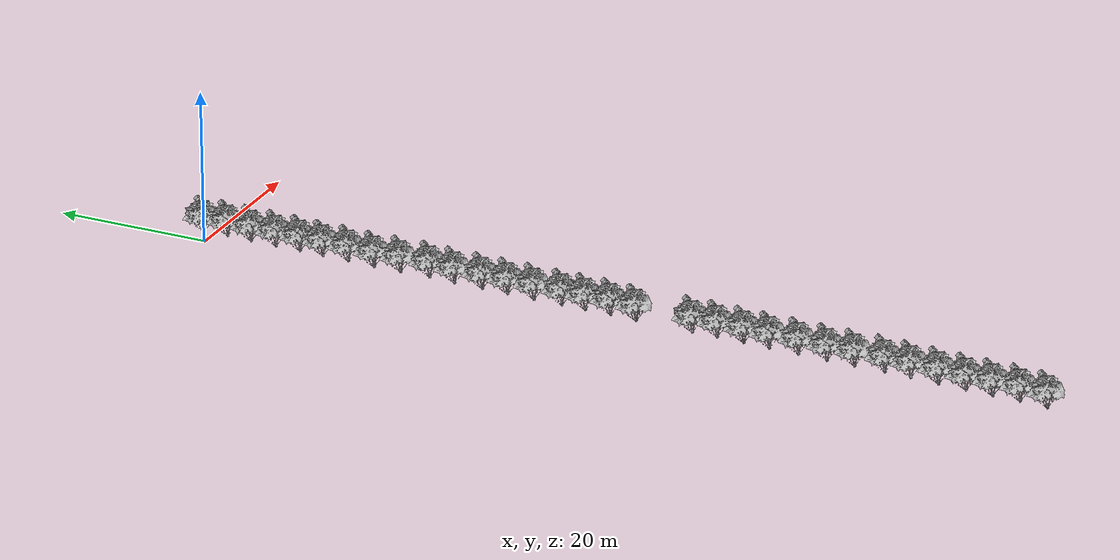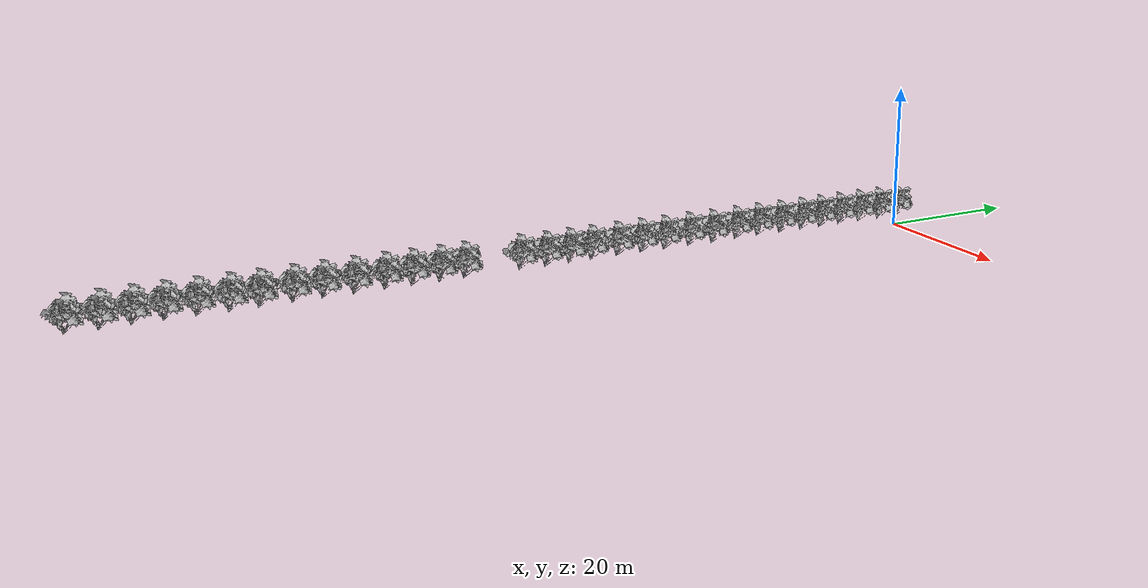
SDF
<?xml version='1.0'?>
<sdf version='1.7'>
  <model name='bush_pattern'>
    <model name='Bush 1'>
      <static>1</static>
      <pose>0 0 1.265 1.57079 -0 0</pose>
      <link name='link'>
        <pose>0 0 0 0 -0 0</pose>
        <collision name='collision'>
          <geometry>
            <mesh>
              <scale>5 5 5</scale>
              <uri>model://bush_1/meshes/bush_1.obj</uri>
            </mesh>
          </geometry>
          <max_contacts>10</max_contacts>
          <surface>
            <contact>
              <ode/>
            </contact>
            <bounce/>
            <friction>
              <torsional>
                <ode/>
              </torsional>
              <ode/>
            </friction>
          </surface>
        </collision>
        <visual name='visual'>
          <geometry>
            <mesh>
              <scale>5 5 5</scale>
              <uri>model://bush_1/meshes/bush_1.obj</uri>
            </mesh>
          </geometry>
        </visual>
        <self_collide>0</self_collide>
        <enable_wind>0</enable_wind>
        <kinematic>0</kinematic>
      </link>
    </model>
    <model name='Bush 1_clone'>
      <static>1</static>
      <pose>0.112137 -3.28784 1.265 1.57079 -0 0</pose>
      <link name='link'>
        <pose>0 0 0 0 -0 0</pose>
        <collision name='collision'>
          <geometry>
            <mesh>
              <scale>5 5 5</scale>
              <uri>model://bush_1/meshes/bush_1.obj</uri>
            </mesh>
          </geometry>
          <max_contacts>10</max_contacts>
          <surface>
            <contact>
              <ode/>
            </contact>
            <bounce/>
            <friction>
              <torsional>
                <ode/>
              </torsional>
              <ode/>
            </friction>
          </surface>
        </collision>
        <visual name='visual'>
          <geometry>
            <mesh>
              <scale>5 5 5</scale>
              <uri>model://bush_1/meshes/bush_1.obj</uri>
            </mesh>
          </geometry>
        </visual>
        <self_collide>0</self_collide>
        <enable_wind>0</enable_wind>
        <kinematic>0</kinematic>
      </link>
    </model>
    <model name='Bush 1_clone_0'>
      <static>1</static>
      <pose>-0.055115 -10.0785 1.265 1.57079 -0 0</pose>
      <link name='link'>
        <pose>0 0 0 0 -0 0</pose>
        <collision name='collision'>
          <geometry>
            <mesh>
              <scale>5 5 5</scale>
              <uri>model://bush_1/meshes/bush_1.obj</uri>
            </mesh>
          </geometry>
          <max_contacts>10</max_contacts>
          <surface>
            <contact>
              <ode/>
            </contact>
            <bounce/>
            <friction>
              <torsional>
                <ode/>
              </torsional>
              <ode/>
            </friction>
          </surface>
        </collision>
        <visual name='visual'>
          <geometry>
            <mesh>
              <scale>5 5 5</scale>
              <uri>model://bush_1/meshes/bush_1.obj</uri>
            </mesh>
          </geometry>
        </visual>
        <self_collide>0</self_collide>
        <enable_wind>0</enable_wind>
        <kinematic>0</kinematic>
      </link>
    </model>
    <model name='Bush 1_clone_1'>
      <static>1</static>
      <pose>-0.061951 -13.4135 1.265 1.57079 -0 0</pose>
      <link name='link'>
        <pose>0 0 0 0 -0 0</pose>
        <collision name='collision'>
          <geometry>
            <mesh>
              <scale>5 5 5</scale>
              <uri>model://bush_1/meshes/bush_1.obj</uri>
            </mesh>
          </geometry>
          <max_contacts>10</max_contacts>
          <surface>
            <contact>
              <ode/>
            </contact>
            <bounce/>
            <friction>
              <torsional>
                <ode/>
              </torsional>
              <ode/>
            </friction>
          </surface>
        </collision>
        <visual name='visual'>
          <geometry>
            <mesh>
              <scale>5 5 5</scale>
              <uri>model://bush_1/meshes/bush_1.obj</uri>
            </mesh>
          </geometry>
        </visual>
        <self_collide>0</self_collide>
        <enable_wind>0</enable_wind>
        <kinematic>0</kinematic>
      </link>
    </model>
    <model name='Bush 1_clone_10'>
      <static>1</static>
      <pose>-0.414612 -41.8186 1.265 1.57079 -0 0</pose>
      <link name='link'>
        <pose>0 0 0 0 -0 0</pose>
        <collision name='collision'>
          <geometry>
            <mesh>
              <scale>5 5 5</scale>
              <uri>model://bush_1/meshes/bush_1.obj</uri>
            </mesh>
          </geometry>
          <max_contacts>10</max_contacts>
          <surface>
            <contact>
              <ode/>
            </contact>
            <bounce/>
            <friction>
              <torsional>
                <ode/>
              </torsional>
              <ode/>
            </friction>
          </surface>
        </collision>
        <visual name='visual'>
          <geometry>
            <mesh>
              <scale>5 5 5</scale>
              <uri>model://bush_1/meshes/bush_1.obj</uri>
            </mesh>
          </geometry>
        </visual>
        <self_collide>0</self_collide>
        <enable_wind>0</enable_wind>
        <kinematic>0</kinematic>
      </link>
    </model>
    <model name='Bush 1_clone_11'>
      <static>1</static>
      <pose>-0.455643 -45.3418 1.265 1.57079 -0 0</pose>
      <link name='link'>
        <pose>0 0 0 0 -0 0</pose>
        <collision name='collision'>
          <geometry>
            <mesh>
              <scale>5 5 5</scale>
              <uri>model://bush_1/meshes/bush_1.obj</uri>
            </mesh>
          </geometry>
          <max_contacts>10</max_contacts>
          <surface>
            <contact>
              <ode/>
            </contact>
            <bounce/>
            <friction>
              <torsional>
                <ode/>
              </torsional>
              <ode/>
            </friction>
          </surface>
        </collision>
        <visual name='visual'>
          <geometry>
            <mesh>
              <scale>5 5 5</scale>
              <uri>model://bush_1/meshes/bush_1.obj</uri>
            </mesh>
          </geometry>
        </visual>
        <self_collide>0</self_collide>
        <enable_wind>0</enable_wind>
        <kinematic>0</kinematic>
      </link>
    </model>
    <model name='Bush 1_clone_12'>
      <static>1</static>
      <pose>-0.473053 -49.0764 1.265 1.57079 -0 0</pose>
      <link name='link'>
        <pose>0 0 0 0 -0 0</pose>
        <collision name='collision'>
          <geometry>
            <mesh>
              <scale>5 5 5</scale>
              <uri>model://bush_1/meshes/bush_1.obj</uri>
            </mesh>
          </geometry>
          <max_contacts>10</max_contacts>
          <surface>
            <contact>
              <ode/>
            </contact>
            <bounce/>
            <friction>
              <torsional>
                <ode/>
              </torsional>
              <ode/>
            </friction>
          </surface>
        </collision>
        <visual name='visual'>
          <geometry>
            <mesh>
              <scale>5 5 5</scale>
              <uri>model://bush_1/meshes/bush_1.obj</uri>
            </mesh>
          </geometry>
        </visual>
        <self_collide>0</self_collide>
        <enable_wind>0</enable_wind>
        <kinematic>0</kinematic>
      </link>
    </model>
    <model name='Bush 1_clone_13'>
      <static>1</static>
      <pose>-0.481537 -52.1925 1.265 1.57079 -0 0</pose>
      <link name='link'>
        <pose>0 0 0 0 -0 0</pose>
        <collision name='collision'>
          <geometry>
            <mesh>
              <scale>5 5 5</scale>
              <uri>model://bush_1/meshes/bush_1.obj</uri>
            </mesh>
          </geometry>
          <max_contacts>10</max_contacts>
          <surface>
            <contact>
              <ode/>
            </contact>
            <bounce/>
            <friction>
              <torsional>
                <ode/>
              </torsional>
              <ode/>
            </friction>
          </surface>
        </collision>
        <visual name='visual'>
          <geometry>
            <mesh>
              <scale>5 5 5</scale>
              <uri>model://bush_1/meshes/bush_1.obj</uri>
            </mesh>
          </geometry>
        </visual>
        <self_collide>0</self_collide>
        <enable_wind>0</enable_wind>
        <kinematic>0</kinematic>
      </link>
    </model>
    <model name='Bush 1_clone_14'>
      <static>1</static>
      <pose>-0.449783 -55.5143 1.265 1.57079 -0 0</pose>
      <link name='link'>
        <pose>0 0 0 0 -0 0</pose>
        <collision name='collision'>
          <geometry>
            <mesh>
              <scale>5 5 5</scale>
              <uri>model://bush_1/meshes/bush_1.obj</uri>
            </mesh>
          </geometry>
          <max_contacts>10</max_contacts>
          <surface>
            <contact>
              <ode/>
            </contact>
            <bounce/>
            <friction>
              <torsional>
                <ode/>
              </torsional>
              <ode/>
            </friction>
          </surface>
        </collision>
        <visual name='visual'>
          <geometry>
            <mesh>
              <scale>5 5 5</scale>
              <uri>model://bush_1/meshes/bush_1.obj</uri>
            </mesh>
          </geometry>
        </visual>
        <self_collide>0</self_collide>
        <enable_wind>0</enable_wind>
        <kinematic>0</kinematic>
      </link>
    </model>
    <model name='Bush 1_clone_14_clone'>
      <static>1</static>
      <pose>-0.668167 -58.9553 1.265 1.57079 -0 0</pose>
      <link name='link'>
        <pose>0 0 0 0 -0 0</pose>
        <collision name='collision'>
          <geometry>
            <mesh>
              <scale>5 5 5</scale>
              <uri>model://bush_1/meshes/bush_1.obj</uri>
            </mesh>
          </geometry>
          <max_contacts>10</max_contacts>
          <surface>
            <contact>
              <ode/>
            </contact>
            <bounce/>
            <friction>
              <torsional>
                <ode/>
              </torsional>
              <ode/>
            </friction>
          </surface>
        </collision>
        <visual name='visual'>
          <geometry>
            <mesh>
              <scale>5 5 5</scale>
              <uri>model://bush_1/meshes/bush_1.obj</uri>
            </mesh>
          </geometry>
        </visual>
        <self_collide>0</self_collide>
        <enable_wind>0</enable_wind>
        <kinematic>0</kinematic>
      </link>
    </model>
    <model name='Bush 1_clone_15'>
      <static>1</static>
      <pose>-1.51018 -108.409 1.265 1.57079 -0 0</pose>
      <link name='link'>
        <pose>0 0 0 0 -0 0</pose>
        <collision name='collision'>
          <geometry>
            <mesh>
              <scale>5 5 5</scale>
              <uri>model://bush_1/meshes/bush_1.obj</uri>
            </mesh>
          </geometry>
          <max_contacts>10</max_contacts>
          <surface>
            <contact>
              <ode/>
            </contact>
            <bounce/>
            <friction>
              <torsional>
                <ode/>
              </torsional>
              <ode/>
            </friction>
          </surface>
        </collision>
        <visual name='visual'>
          <geometry>
            <mesh>
              <scale>5 5 5</scale>
              <uri>model://bush_1/meshes/bush_1.obj</uri>
            </mesh>
          </geometry>
        </visual>
        <self_collide>0</self_collide>
        <enable_wind>0</enable_wind>
        <kinematic>0</kinematic>
      </link>
    </model>
    <model name='Bush 1_clone_15_clone'>
      <static>1</static>
      <pose>-1.7821 -111.923 1.265 1.57079 -0 0</pose>
      <link name='link'>
        <pose>0 0 0 0 -0 0</pose>
        <collision name='collision'>
          <geometry>
            <mesh>
              <scale>5 5 5</scale>
              <uri>model://bush_1/meshes/bush_1.obj</uri>
            </mesh>
          </geometry>
          <max_contacts>10</max_contacts>
          <surface>
            <contact>
              <ode/>
            </contact>
            <bounce/>
            <friction>
              <torsional>
                <ode/>
              </torsional>
              <ode/>
            </friction>
          </surface>
        </collision>
        <visual name='visual'>
          <geometry>
            <mesh>
              <scale>5 5 5</scale>
              <uri>model://bush_1/meshes/bush_1.obj</uri>
            </mesh>
          </geometry>
        </visual>
        <self_collide>0</self_collide>
        <enable_wind>0</enable_wind>
        <kinematic>0</kinematic>
      </link>
    </model>
    <model name='Bush 1_clone_2'>
      <static>1</static>
      <pose>-0.114975 -16.5927 1.265 1.57079 -0 0</pose>
      <link name='link'>
        <pose>0 0 0 0 -0 0</pose>
        <collision name='collision'>
          <geometry>
            <mesh>
              <scale>5 5 5</scale>
              <uri>model://bush_1/meshes/bush_1.obj</uri>
            </mesh>
          </geometry>
          <max_contacts>10</max_contacts>
          <surface>
            <contact>
              <ode/>
            </contact>
            <bounce/>
            <friction>
              <torsional>
                <ode/>
              </torsional>
              <ode/>
            </friction>
          </surface>
        </collision>
        <visual name='visual'>
          <geometry>
            <mesh>
              <scale>5 5 5</scale>
              <uri>model://bush_1/meshes/bush_1.obj</uri>
            </mesh>
          </geometry>
        </visual>
        <self_collide>0</self_collide>
        <enable_wind>0</enable_wind>
        <kinematic>0</kinematic>
      </link>
    </model>
    <model name='Bush 1_clone_3'>
      <static>1</static>
      <pose>-0.145905 -20.1059 1.265 1.57079 -0 0</pose>
      <link name='link'>
        <pose>0 0 0 0 -0 0</pose>
        <collision name='collision'>
          <geometry>
            <mesh>
              <scale>5 5 5</scale>
              <uri>model://bush_1/meshes/bush_1.obj</uri>
            </mesh>
          </geometry>
          <max_contacts>10</max_contacts>
          <surface>
            <contact>
              <ode/>
            </contact>
            <bounce/>
            <friction>
              <torsional>
                <ode/>
              </torsional>
              <ode/>
            </friction>
          </surface>
        </collision>
        <visual name='visual'>
          <geometry>
            <mesh>
              <scale>5 5 5</scale>
              <uri>model://bush_1/meshes/bush_1.obj</uri>
            </mesh>
          </geometry>
        </visual>
        <self_collide>0</self_collide>
        <enable_wind>0</enable_wind>
        <kinematic>0</kinematic>
      </link>
    </model>
    <model name='Bush 1_clone_4'>
      <static>1</static>
      <pose>-0.334549 -23.7048 1.265 1.57079 -0 0</pose>
      <link name='link'>
        <pose>0 0 0 0 -0 0</pose>
        <collision name='collision'>
          <geometry>
            <mesh>
              <scale>5 5 5</scale>
              <uri>model://bush_1/meshes/bush_1.obj</uri>
            </mesh>
          </geometry>
          <max_contacts>10</max_contacts>
          <surface>
            <contact>
              <ode/>
            </contact>
            <bounce/>
            <friction>
              <torsional>
                <ode/>
              </torsional>
              <ode/>
            </friction>
          </surface>
        </collision>
        <visual name='visual'>
          <geometry>
            <mesh>
              <scale>5 5 5</scale>
              <uri>model://bush_1/meshes/bush_1.obj</uri>
            </mesh>
          </geometry>
        </visual>
        <self_collide>0</self_collide>
        <enable_wind>0</enable_wind>
        <kinematic>0</kinematic>
      </link>
    </model>
    <model name='Bush 1_clone_5'>
      <static>1</static>
      <pose>-0.252243 -27.2728 1.265 1.57079 -0 0</pose>
      <link name='link'>
        <pose>0 0 0 0 -0 0</pose>
        <collision name='collision'>
          <geometry>
            <mesh>
              <scale>5 5 5</scale>
              <uri>model://bush_1/meshes/bush_1.obj</uri>
            </mesh>
          </geometry>
          <max_contacts>10</max_contacts>
          <surface>
            <contact>
              <ode/>
            </contact>
            <bounce/>
            <friction>
              <torsional>
                <ode/>
              </torsional>
              <ode/>
            </friction>
          </surface>
        </collision>
        <visual name='visual'>
          <geometry>
            <mesh>
              <scale>5 5 5</scale>
              <uri>model://bush_1/meshes/bush_1.obj</uri>
            </mesh>
          </geometry>
        </visual>
        <self_collide>0</self_collide>
        <enable_wind>0</enable_wind>
        <kinematic>0</kinematic>
      </link>
    </model>
    <model name='Bush 1_clone_6'>
      <static>1</static>
      <pose>-0.070557 -31.1364 1.265 1.57079 -0 0</pose>
      <link name='link'>
        <pose>0 0 0 0 -0 0</pose>
        <collision name='collision'>
          <geometry>
            <mesh>
              <scale>5 5 5</scale>
              <uri>model://bush_1/meshes/bush_1.obj</uri>
            </mesh>
          </geometry>
          <max_contacts>10</max_contacts>
          <surface>
            <contact>
              <ode/>
            </contact>
            <bounce/>
            <friction>
              <torsional>
                <ode/>
              </torsional>
              <ode/>
            </friction>
          </surface>
        </collision>
        <visual name='visual'>
          <geometry>
            <mesh>
              <scale>5 5 5</scale>
              <uri>model://bush_1/meshes/bush_1.obj</uri>
            </mesh>
          </geometry>
        </visual>
        <self_collide>0</self_collide>
        <enable_wind>0</enable_wind>
        <kinematic>0</kinematic>
      </link>
    </model>
    <model name='Bush 1_clone_7'>
      <static>1</static>
      <pose>-0.343124 -34.6276 1.265 1.57079 -0 0</pose>
      <link name='link'>
        <pose>0 0 0 0 -0 0</pose>
        <collision name='collision'>
          <geometry>
            <mesh>
              <scale>5 5 5</scale>
              <uri>model://bush_1/meshes/bush_1.obj</uri>
            </mesh>
          </geometry>
          <max_contacts>10</max_contacts>
          <surface>
            <contact>
              <ode/>
            </contact>
            <bounce/>
            <friction>
              <torsional>
                <ode/>
              </torsional>
              <ode/>
            </friction>
          </surface>
        </collision>
        <visual name='visual'>
          <geometry>
            <mesh>
              <scale>5 5 5</scale>
              <uri>model://bush_1/meshes/bush_1.obj</uri>
            </mesh>
          </geometry>
        </visual>
        <self_collide>0</self_collide>
        <enable_wind>0</enable_wind>
        <kinematic>0</kinematic>
      </link>
    </model>
    <model name='Bush 1_clone_8'>
      <static>1</static>
      <pose>-0.333206 -38.3762 1.265 1.57079 -0 0</pose>
      <link name='link'>
        <pose>0 0 0 0 -0 0</pose>
        <collision name='collision'>
          <geometry>
            <mesh>
              <scale>5 5 5</scale>
              <uri>model://bush_1/meshes/bush_1.obj</uri>
            </mesh>
          </geometry>
          <max_contacts>10</max_contacts>
          <surface>
            <contact>
              <ode/>
            </contact>
            <bounce/>
            <friction>
              <torsional>
                <ode/>
              </torsional>
              <ode/>
            </friction>
          </surface>
        </collision>
        <visual name='visual'>
          <geometry>
            <mesh>
              <scale>5 5 5</scale>
              <uri>model://bush_1/meshes/bush_1.obj</uri>
            </mesh>
          </geometry>
        </visual>
        <self_collide>0</self_collide>
        <enable_wind>0</enable_wind>
        <kinematic>0</kinematic>
      </link>
    </model>
    <model name='Bush 1_clone_9'>
      <static>1</static>
      <pose>-0.698364 -66.3474 1.265 1.57079 -0 0</pose>
      <link name='link'>
        <pose>0 0 0 0 -0 0</pose>
        <collision name='collision'>
          <geometry>
            <mesh>
              <scale>5 5 5</scale>
              <uri>model://bush_1/meshes/bush_1.obj</uri>
            </mesh>
          </geometry>
          <max_contacts>10</max_contacts>
          <surface>
            <contact>
              <ode/>
            </contact>
            <bounce/>
            <friction>
              <torsional>
                <ode/>
              </torsional>
              <ode/>
            </friction>
          </surface>
        </collision>
        <visual name='visual'>
          <geometry>
            <mesh>
              <scale>5 5 5</scale>
              <uri>model://bush_1/meshes/bush_1.obj</uri>
            </mesh>
          </geometry>
        </visual>
        <self_collide>0</self_collide>
        <enable_wind>0</enable_wind>
        <kinematic>0</kinematic>
      </link>
    </model>
    <model name='Bush 1_clone_9_clone_0'>
      <static>1</static>
      <pose>-0.661194 -69.5571 1.265 1.57079 -0 0</pose>
      <link name='link'>
        <pose>0 0 0 0 -0 0</pose>
        <collision name='collision'>
          <geometry>
            <mesh>
              <scale>5 5 5</scale>
              <uri>model://bush_1/meshes/bush_1.obj</uri>
            </mesh>
          </geometry>
          <max_contacts>10</max_contacts>
          <surface>
            <contact>
              <ode/>
            </contact>
            <bounce/>
            <friction>
              <torsional>
                <ode/>
              </torsional>
              <ode/>
            </friction>
          </surface>
        </collision>
        <visual name='visual'>
          <geometry>
            <mesh>
              <scale>5 5 5</scale>
              <uri>model://bush_1/meshes/bush_1.obj</uri>
            </mesh>
          </geometry>
        </visual>
        <self_collide>0</self_collide>
        <enable_wind>0</enable_wind>
        <kinematic>0</kinematic>
      </link>
    </model>
    <model name='Bush 1_clone_9_clone_1'>
      <static>1</static>
      <pose>-0.751205 -73.0414 1.265 1.57079 -0 0</pose>
      <link name='link'>
        <pose>0 0 0 0 -0 0</pose>
        <collision name='collision'>
          <geometry>
            <mesh>
              <scale>5 5 5</scale>
              <uri>model://bush_1/meshes/bush_1.obj</uri>
            </mesh>
          </geometry>
          <max_contacts>10</max_contacts>
          <surface>
            <contact>
              <ode/>
            </contact>
            <bounce/>
            <friction>
              <torsional>
                <ode/>
              </torsional>
              <ode/>
            </friction>
          </surface>
        </collision>
        <visual name='visual'>
          <geometry>
            <mesh>
              <scale>5 5 5</scale>
              <uri>model://bush_1/meshes/bush_1.obj</uri>
            </mesh>
          </geometry>
        </visual>
        <self_collide>0</self_collide>
        <enable_wind>0</enable_wind>
        <kinematic>0</kinematic>
      </link>
    </model>
    <model name='Bush 1_clone_9_clone_10'>
      <static>1</static>
      <pose>-1.26973 -98.1156 1.265 1.57079 -0 0</pose>
      <link name='link'>
        <pose>0 0 0 0 -0 0</pose>
        <collision name='collision'>
          <geometry>
            <mesh>
              <scale>5 5 5</scale>
              <uri>model://bush_1/meshes/bush_1.obj</uri>
            </mesh>
          </geometry>
          <max_contacts>10</max_contacts>
          <surface>
            <contact>
              <ode/>
            </contact>
            <bounce/>
            <friction>
              <torsional>
                <ode/>
              </torsional>
              <ode/>
            </friction>
          </surface>
        </collision>
        <visual name='visual'>
          <geometry>
            <mesh>
              <scale>5 5 5</scale>
              <uri>model://bush_1/meshes/bush_1.obj</uri>
            </mesh>
          </geometry>
        </visual>
        <self_collide>0</self_collide>
        <enable_wind>0</enable_wind>
        <kinematic>0</kinematic>
      </link>
    </model>
    <model name='Bush 1_clone_9_clone_11'>
      <static>1</static>
      <pose>-1.44673 -101.623 1.265 1.57079 -0 0</pose>
      <link name='link'>
        <pose>0 0 0 0 -0 0</pose>
        <collision name='collision'>
          <geometry>
            <mesh>
              <scale>5 5 5</scale>
              <uri>model://bush_1/meshes/bush_1.obj</uri>
            </mesh>
          </geometry>
          <max_contacts>10</max_contacts>
          <surface>
            <contact>
              <ode/>
            </contact>
            <bounce/>
            <friction>
              <torsional>
                <ode/>
              </torsional>
              <ode/>
            </friction>
          </surface>
        </collision>
        <visual name='visual'>
          <geometry>
            <mesh>
              <scale>5 5 5</scale>
              <uri>model://bush_1/meshes/bush_1.obj</uri>
            </mesh>
          </geometry>
        </visual>
        <self_collide>0</self_collide>
        <enable_wind>0</enable_wind>
        <kinematic>0</kinematic>
      </link>
    </model>
    <model name='Bush 1_clone_9_clone_12'>
      <static>1</static>
      <pose>-1.53973 -105.012 1.265 1.57079 -0 0</pose>
      <link name='link'>
        <pose>0 0 0 0 -0 0</pose>
        <collision name='collision'>
          <geometry>
            <mesh>
              <scale>5 5 5</scale>
              <uri>model://bush_1/meshes/bush_1.obj</uri>
            </mesh>
          </geometry>
          <max_contacts>10</max_contacts>
          <surface>
            <contact>
              <ode/>
            </contact>
            <bounce/>
            <friction>
              <torsional>
                <ode/>
              </torsional>
              <ode/>
            </friction>
          </surface>
        </collision>
        <visual name='visual'>
          <geometry>
            <mesh>
              <scale>5 5 5</scale>
              <uri>model://bush_1/meshes/bush_1.obj</uri>
            </mesh>
          </geometry>
        </visual>
        <self_collide>0</self_collide>
        <enable_wind>0</enable_wind>
        <kinematic>0</kinematic>
      </link>
    </model>
    <model name='Bush 1_clone_9_clone_2'>
      <static>1</static>
      <pose>-0.855164 -76.3962 1.265 1.57079 -0 0</pose>
      <link name='link'>
        <pose>0 0 0 0 -0 0</pose>
        <collision name='collision'>
          <geometry>
            <mesh>
              <scale>5 5 5</scale>
              <uri>model://bush_1/meshes/bush_1.obj</uri>
            </mesh>
          </geometry>
          <max_contacts>10</max_contacts>
          <surface>
            <contact>
              <ode/>
            </contact>
            <bounce/>
            <friction>
              <torsional>
                <ode/>
              </torsional>
              <ode/>
            </friction>
          </surface>
        </collision>
        <visual name='visual'>
          <geometry>
            <mesh>
              <scale>5 5 5</scale>
              <uri>model://bush_1/meshes/bush_1.obj</uri>
            </mesh>
          </geometry>
        </visual>
        <self_collide>0</self_collide>
        <enable_wind>0</enable_wind>
        <kinematic>0</kinematic>
      </link>
    </model>
    <model name='Bush 1_clone_9_clone_4'>
      <static>1</static>
      <pose>-0.878479 -80.1486 1.265 1.57079 -0 0</pose>
      <link name='link'>
        <pose>0 0 0 0 -0 0</pose>
        <collision name='collision'>
          <geometry>
            <mesh>
              <scale>5 5 5</scale>
              <uri>model://bush_1/meshes/bush_1.obj</uri>
            </mesh>
          </geometry>
          <max_contacts>10</max_contacts>
          <surface>
            <contact>
              <ode/>
            </contact>
            <bounce/>
            <friction>
              <torsional>
                <ode/>
              </torsional>
              <ode/>
            </friction>
          </surface>
        </collision>
        <visual name='visual'>
          <geometry>
            <mesh>
              <scale>5 5 5</scale>
              <uri>model://bush_1/meshes/bush_1.obj</uri>
            </mesh>
          </geometry>
        </visual>
        <self_collide>0</self_collide>
        <enable_wind>0</enable_wind>
        <kinematic>0</kinematic>
      </link>
    </model>
    <model name='Bush 1_clone_9_clone_5'>
      <static>1</static>
      <pose>-0.996231 -83.8565 1.265 1.57079 -0 0</pose>
      <link name='link'>
        <pose>0 0 0 0 -0 0</pose>
        <collision name='collision'>
          <geometry>
            <mesh>
              <scale>5 5 5</scale>
              <uri>model://bush_1/meshes/bush_1.obj</uri>
            </mesh>
          </geometry>
          <max_contacts>10</max_contacts>
          <surface>
            <contact>
              <ode/>
            </contact>
            <bounce/>
            <friction>
              <torsional>
                <ode/>
              </torsional>
              <ode/>
            </friction>
          </surface>
        </collision>
        <visual name='visual'>
          <geometry>
            <mesh>
              <scale>5 5 5</scale>
              <uri>model://bush_1/meshes/bush_1.obj</uri>
            </mesh>
          </geometry>
        </visual>
        <self_collide>0</self_collide>
        <enable_wind>0</enable_wind>
        <kinematic>0</kinematic>
      </link>
    </model>
    <model name='Bush 1_clone_9_clone_6'>
      <static>1</static>
      <pose>-0.992874 -87.3787 1.265 1.57079 -0 0</pose>
      <link name='link'>
        <pose>0 0 0 0 -0 0</pose>
        <collision name='collision'>
          <geometry>
            <mesh>
              <scale>5 5 5</scale>
              <uri>model://bush_1/meshes/bush_1.obj</uri>
            </mesh>
          </geometry>
          <max_contacts>10</max_contacts>
          <surface>
            <contact>
              <ode/>
            </contact>
            <bounce/>
            <friction>
              <torsional>
                <ode/>
              </torsional>
              <ode/>
            </friction>
          </surface>
        </collision>
        <visual name='visual'>
          <geometry>
            <mesh>
              <scale>5 5 5</scale>
              <uri>model://bush_1/meshes/bush_1.obj</uri>
            </mesh>
          </geometry>
        </visual>
        <self_collide>0</self_collide>
        <enable_wind>0</enable_wind>
        <kinematic>0</kinematic>
      </link>
    </model>
    <model name='Bush 1_clone_9_clone_7'>
      <static>1</static>
      <pose>-0.997162 -91.2235 1.265 1.57079 -0 0</pose>
      <link name='link'>
        <pose>0 0 0 0 -0 0</pose>
        <collision name='collision'>
          <geometry>
            <mesh>
              <scale>5 5 5</scale>
              <uri>model://bush_1/meshes/bush_1.obj</uri>
            </mesh>
          </geometry>
          <max_contacts>10</max_contacts>
          <surface>
            <contact>
              <ode/>
            </contact>
            <bounce/>
            <friction>
              <torsional>
                <ode/>
              </torsional>
              <ode/>
            </friction>
          </surface>
        </collision>
        <visual name='visual'>
          <geometry>
            <mesh>
              <scale>5 5 5</scale>
              <uri>model://bush_1/meshes/bush_1.obj</uri>
            </mesh>
          </geometry>
        </visual>
        <self_collide>0</self_collide>
        <enable_wind>0</enable_wind>
        <kinematic>0</kinematic>
      </link>
    </model>
    <model name='Bush 1_clone_9_clone_8'>
      <static>1</static>
      <pose>-1.09923 -94.5594 1.265 1.57079 -0 0</pose>
      <link name='link'>
        <pose>0 0 0 0 -0 0</pose>
        <collision name='collision'>
          <geometry>
            <mesh>
              <scale>5 5 5</scale>
              <uri>model://bush_1/meshes/bush_1.obj</uri>
            </mesh>
          </geometry>
          <max_contacts>10</max_contacts>
          <surface>
            <contact>
              <ode/>
            </contact>
            <bounce/>
            <friction>
              <torsional>
                <ode/>
              </torsional>
              <ode/>
            </friction>
          </surface>
        </collision>
        <visual name='visual'>
          <geometry>
            <mesh>
              <scale>5 5 5</scale>
              <uri>model://bush_1/meshes/bush_1.obj</uri>
            </mesh>
          </geometry>
        </visual>
        <self_collide>0</self_collide>
        <enable_wind>0</enable_wind>
        <kinematic>0</kinematic>
      </link>
    </model>
    <model name='Bush 1_clone_clone'>
      <static>1</static>
      <pose>-0.029892 -6.62421 1.265 1.57079 -0 0</pose>
      <link name='link'>
        <pose>0 0 0 0 -0 0</pose>
        <collision name='collision'>
          <geometry>
            <mesh>
              <scale>5 5 5</scale>
              <uri>model://bush_1/meshes/bush_1.obj</uri>
            </mesh>
          </geometry>
          <max_contacts>10</max_contacts>
          <surface>
            <contact>
              <ode/>
            </contact>
            <bounce/>
            <friction>
              <torsional>
                <ode/>
              </torsional>
              <ode/>
            </friction>
          </surface>
        </collision>
        <visual name='visual'>
          <geometry>
            <mesh>
              <scale>5 5 5</scale>
              <uri>model://bush_1/meshes/bush_1.obj</uri>
            </mesh>
          </geometry>
        </visual>
        <self_collide>0</self_collide>
        <enable_wind>0</enable_wind>
        <kinematic>0</kinematic>
      </link>
    </model>
    <static>0</static>
    <allow_auto_disable>1</allow_auto_disable>
  </model>
</sdf>
